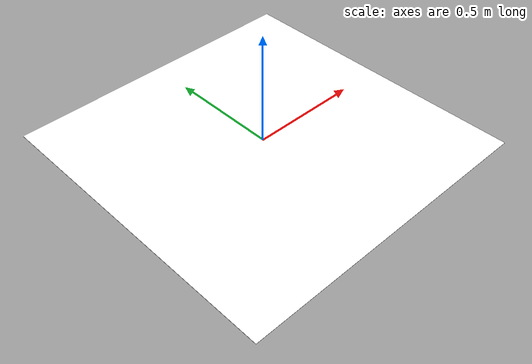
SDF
<?xml version="1.0" encoding="UTF-8"?>
<sdf version='1.9'>
  <model name='apriltag_36h11'>
    <static>true</static>
    <pose>0 0 0.001 0 0 0</pose>
    <link name='base'>
      <visual name='base_visual'>
        <geometry>
          <plane>
            <normal>0 0 1</normal>
            <size>1.4 1.4</size>
          </plane>
        </geometry>
        <material>
          <diffuse>1 1 1 1</diffuse>
          <specular>0.1 0.1 0.1 1</specular>
          <pbr>
            <metal>
              <albedo_map>model://apriltag_36h11/apriltag_36h11.png</albedo_map>
            </metal>
          </pbr>
        </material>
      </visual>
    </link>
  </model>
</sdf>
